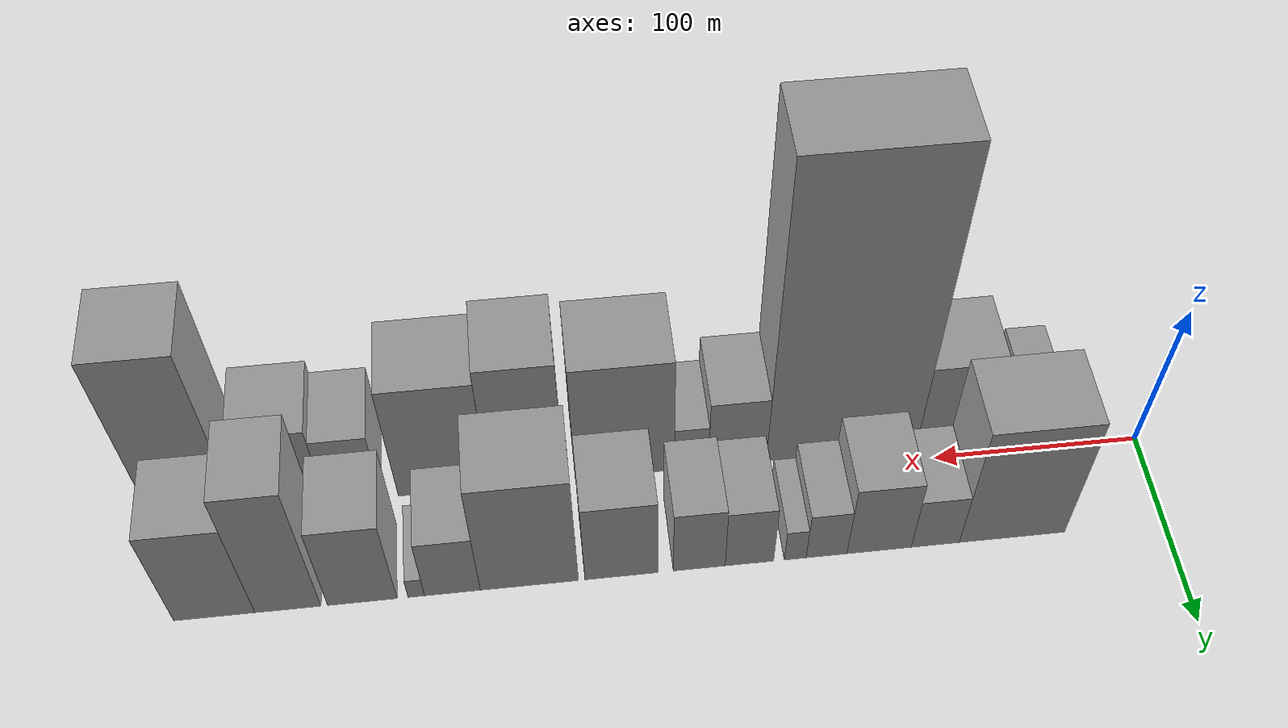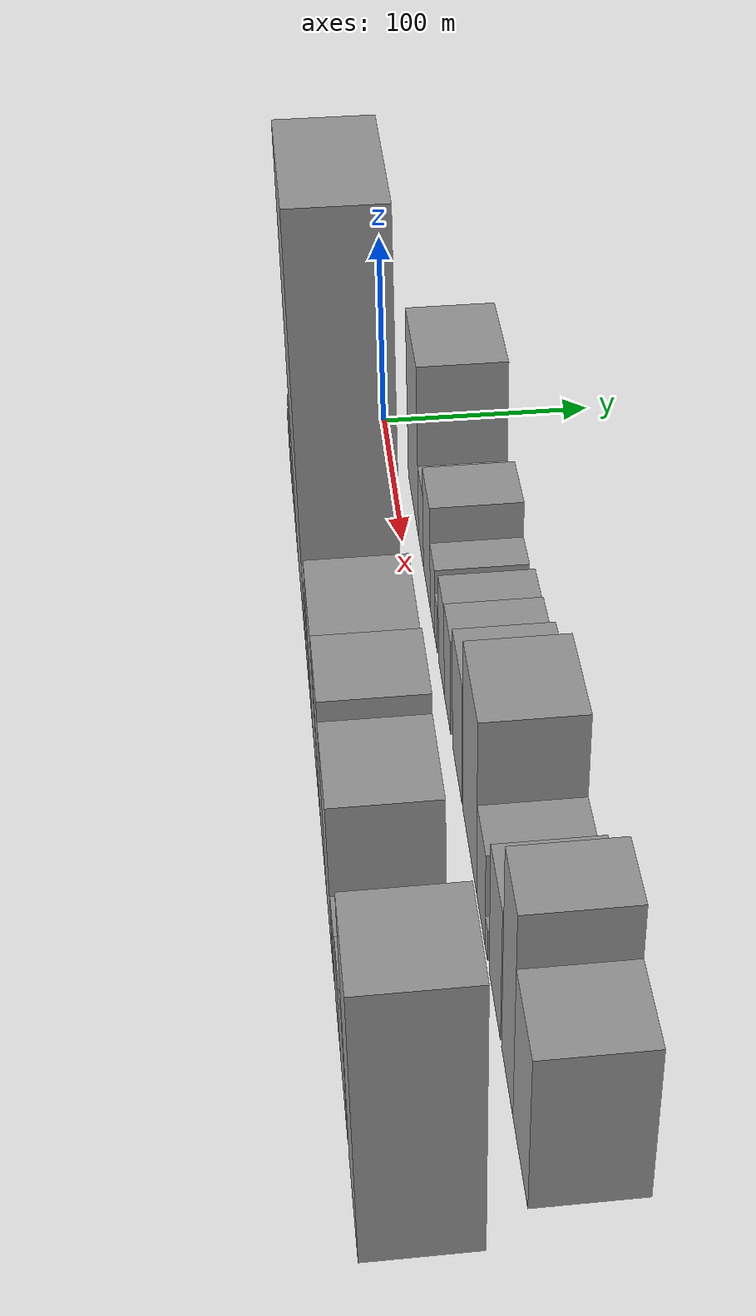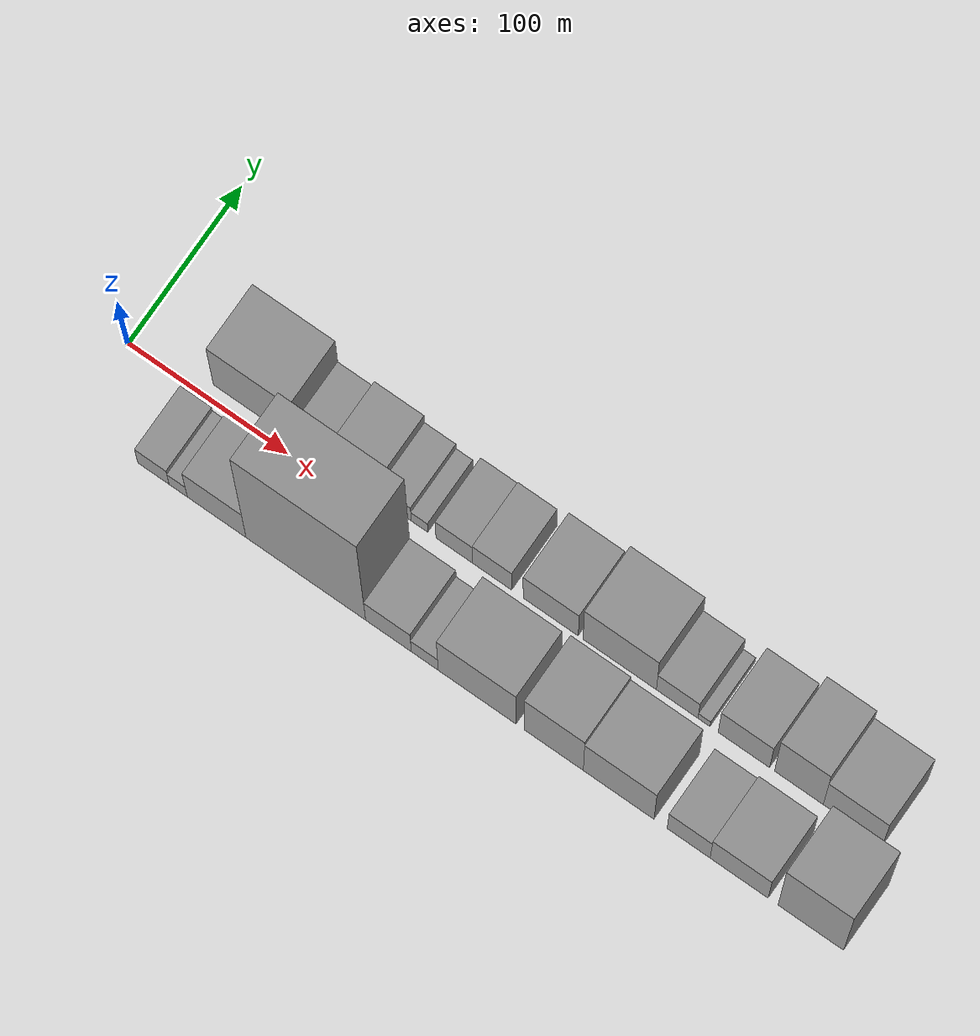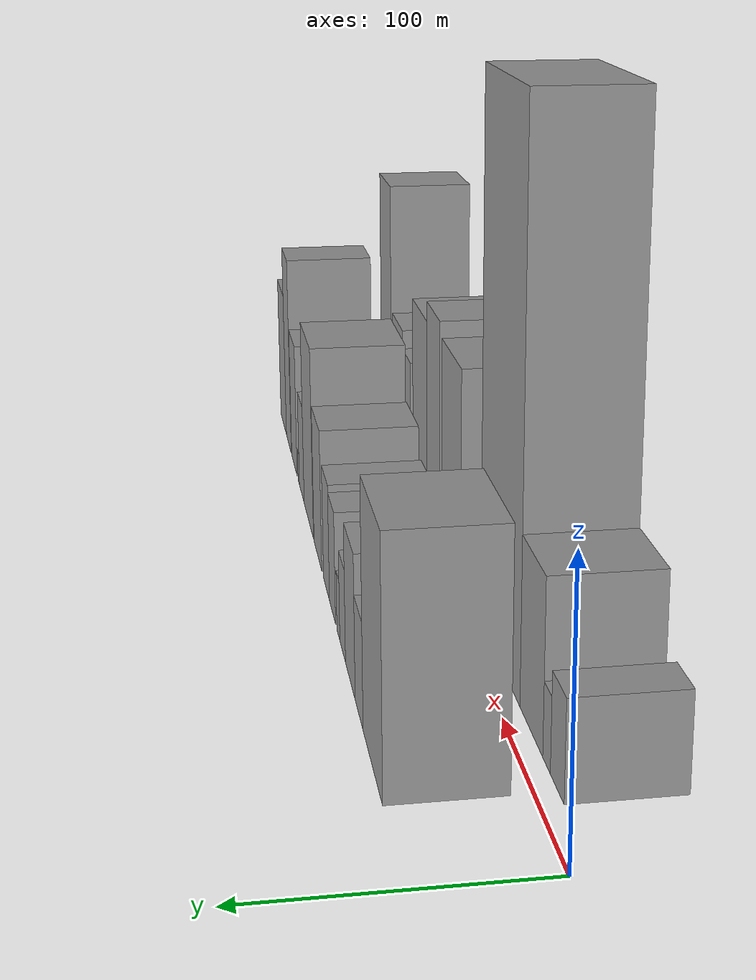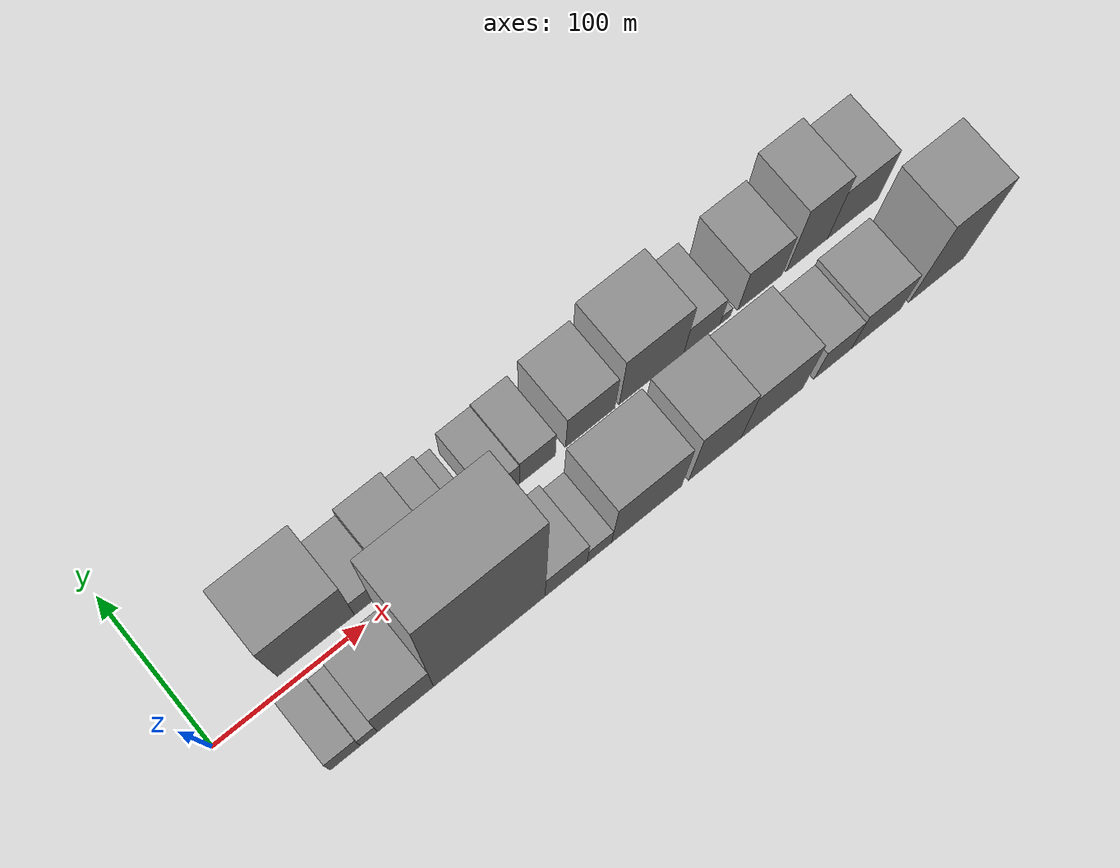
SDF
<sdf version="1.6">
 <world name="default">
  <scene>
   <sky><clouds><speed>12</speed></clouds></sky>
   <ambient>0.4 0.4 0.4 1</ambient>
   <background>0.7 0.7 0.7 1</background>
   <shadows>1</shadows>
  </scene>
  <gravity>0 0 -9.8066</gravity>
  <magnetic_field>6e-06 2.3e-05 -4.2e-05</magnetic_field>
  <physics default="0" name="default_physics" type="ode">
   <ode>
    <solver>
     <type>quick</type>
     <iters>10</iters>
     <sor>1.0</sor>
     <use_dynamic_moi_rescaling>0</use_dynamic_moi_rescaling>
    </solver>
    <constraints>
     <cfm>0</cfm>
     <erp>0.2</erp>
     <contact_max_correcting_vel>100</contact_max_correcting_vel>
     <contact_surface_layer>0.001</contact_surface_layer>
    </constraints>
   </ode>
   <max_step_size>0.004</max_step_size>
   <real_time_factor>1</real_time_factor>
   <real_time_update_rate>250</real_time_update_rate>
  </physics>
  <light name="sun" type="directional">
   <pose>0 0 10 0 0 0</pose>
   <diffuse>0.8 0.8 0.8 1</diffuse>
   <specular>0.2 0.2 0.2 1</specular>
   <attenuation>
    <range>1000</range>
    <constant>0.9</constant>
    <linear>0.01</linear>
    <quadratic>0.001</quadratic>
   </attenuation>
   <direction>-0.5 0.1 -0.9</direction>
  </light>
  <model name="building_1">
   <static>1</static>
   <pose>73.2418 27.5000 0 0.000000 0.000000 1.570796</pose>
   <link name="link">
    <pose>0 0 45.00 0 0 0</pose>
    <collision name="collision"><geometry><box><size>40.0000 50.4836 90.0000</size></box></geometry></collision>
    <visual name="visual">
     <cast_shadows>0</cast_shadows>
     <geometry><box><size>40.0000 50.4836 90.0000</size></box></geometry>
     <material>
      <script>
       <uri>model://grey_wall/materials/scripts</uri>
       <uri>model://grey_wall/materials/textures</uri>
       <name>vrc/grey_wall</name>
      </script>
     </material>
    </visual>
   </link>
  </model>
  <model name="building_2">
   <static>1</static>
   <pose>109.9383 27.5000 0 0.000000 0.000000 1.570796</pose>
   <link name="link">
    <pose>0 0 19.50 0 0 0</pose>
    <collision name="collision"><geometry><box><size>40.0000 22.9094 39.0000</size></box></geometry></collision>
    <visual name="visual">
     <cast_shadows>0</cast_shadows>
     <geometry><box><size>40.0000 22.9094 39.0000</size></box></geometry>
     <material>
      <script>
       <uri>model://grey_wall/materials/scripts</uri>
       <uri>model://grey_wall/materials/textures</uri>
       <name>vrc/grey_wall</name>
      </script>
     </material>
    </visual>
   </link>
  </model>
  <model name="building_3">
   <static>1</static>
   <pose>136.6664 27.5000 0 0.000000 0.000000 1.570796</pose>
   <link name="link">
    <pose>0 0 27.00 0 0 0</pose>
    <collision name="collision"><geometry><box><size>40.0000 30.5467 54.0000</size></box></geometry></collision>
    <visual name="visual">
     <cast_shadows>0</cast_shadows>
     <geometry><box><size>40.0000 30.5467 54.0000</size></box></geometry>
     <material>
      <script>
       <uri>model://grey_wall/materials/scripts</uri>
       <uri>model://grey_wall/materials/textures</uri>
       <name>vrc/grey_wall</name>
      </script>
     </material>
    </visual>
   </link>
  </model>
  <model name="building_4">
   <static>1</static>
   <pose>161.5848 27.5000 0 0.000000 0.000000 1.570796</pose>
   <link name="link">
    <pose>0 0 18.00 0 0 0</pose>
    <collision name="collision"><geometry><box><size>40.0000 19.2902 36.0000</size></box></geometry></collision>
    <visual name="visual">
     <cast_shadows>0</cast_shadows>
     <geometry><box><size>40.0000 19.2902 36.0000</size></box></geometry>
     <material>
      <script>
       <uri>model://grey_wall/materials/scripts</uri>
       <uri>model://grey_wall/materials/textures</uri>
       <name>vrc/grey_wall</name>
      </script>
     </material>
    </visual>
   </link>
  </model>
  <model name="building_5">
   <static>1</static>
   <pose>176.3544 27.5000 0 0.000000 0.000000 1.570796</pose>
   <link name="link">
    <pose>0 0 12.00 0 0 0</pose>
    <collision name="collision"><geometry><box><size>40.0000 10.2491 24.0000</size></box></geometry></collision>
    <visual name="visual">
     <cast_shadows>0</cast_shadows>
     <geometry><box><size>40.0000 10.2491 24.0000</size></box></geometry>
     <material>
      <script>
       <uri>model://grey_wall/materials/scripts</uri>
       <uri>model://grey_wall/materials/textures</uri>
       <name>vrc/grey_wall</name>
      </script>
     </material>
    </visual>
   </link>
  </model>
  <model name="building_6">
   <static>1</static>
   <pose>197.8330 27.5000 0 0.000000 0.000000 1.570796</pose>
   <link name="link">
    <pose>0 0 22.50 0 0 0</pose>
    <collision name="collision"><geometry><box><size>40.0000 22.7079 45.0000</size></box></geometry></collision>
    <visual name="visual">
     <cast_shadows>0</cast_shadows>
     <geometry><box><size>40.0000 22.7079 45.0000</size></box></geometry>
     <material>
      <script>
       <uri>model://grey_wall/materials/scripts</uri>
       <uri>model://grey_wall/materials/textures</uri>
       <name>vrc/grey_wall</name>
      </script>
     </material>
    </visual>
   </link>
  </model>
  <model name="building_7">
   <static>1</static>
   <pose>221.2856 27.5000 0 0.000000 0.000000 1.570796</pose>
   <link name="link">
    <pose>0 0 24.00 0 0 0</pose>
    <collision name="collision"><geometry><box><size>40.0000 24.1974 48.0000</size></box></geometry></collision>
    <visual name="visual">
     <cast_shadows>0</cast_shadows>
     <geometry><box><size>40.0000 24.1974 48.0000</size></box></geometry>
     <material>
      <script>
       <uri>model://grey_wall/materials/scripts</uri>
       <uri>model://grey_wall/materials/textures</uri>
       <name>vrc/grey_wall</name>
      </script>
     </material>
    </visual>
   </link>
  </model>
  <model name="building_8">
   <static>1</static>
   <pose>257.4018 27.5000 0 0.000000 0.000000 1.570796</pose>
   <link name="link">
    <pose>0 0 30.00 0 0 0</pose>
    <collision name="collision"><geometry><box><size>40.0000 34.0350 60.0000</size></box></geometry></collision>
    <visual name="visual">
     <cast_shadows>0</cast_shadows>
     <geometry><box><size>40.0000 34.0350 60.0000</size></box></geometry>
     <material>
      <script>
       <uri>model://grey_wall/materials/scripts</uri>
       <uri>model://grey_wall/materials/textures</uri>
       <name>vrc/grey_wall</name>
      </script>
     </material>
    </visual>
   </link>
  </model>
  <model name="building_9">
   <static>1</static>
   <pose>299.9891 27.5000 0 0.000000 0.000000 1.570796</pose>
   <link name="link">
    <pose>0 0 42.00 0 0 0</pose>
    <collision name="collision"><geometry><box><size>40.0000 45.1396 84.0000</size></box></geometry></collision>
    <visual name="visual">
     <cast_shadows>0</cast_shadows>
     <geometry><box><size>40.0000 45.1396 84.0000</size></box></geometry>
     <material>
      <script>
       <uri>model://grey_wall/materials/scripts</uri>
       <uri>model://grey_wall/materials/textures</uri>
       <name>vrc/grey_wall</name>
      </script>
     </material>
    </visual>
   </link>
  </model>
  <model name="building_10">
   <static>1</static>
   <pose>335.3266 27.5000 0 0.000000 0.000000 1.570796</pose>
   <link name="link">
    <pose>0 0 22.50 0 0 0</pose>
    <collision name="collision"><geometry><box><size>40.0000 25.5353 45.0000</size></box></geometry></collision>
    <visual name="visual">
     <cast_shadows>0</cast_shadows>
     <geometry><box><size>40.0000 25.5353 45.0000</size></box></geometry>
     <material>
      <script>
       <uri>model://grey_wall/materials/scripts</uri>
       <uri>model://grey_wall/materials/textures</uri>
       <name>vrc/grey_wall</name>
      </script>
     </material>
    </visual>
   </link>
  </model>
  <model name="building_11">
   <static>1</static>
   <pose>351.8180 27.5000 0 0.000000 0.000000 1.570796</pose>
   <link name="link">
    <pose>0 0 7.50 0 0 0</pose>
    <collision name="collision"><geometry><box><size>40.0000 7.4475 15.0000</size></box></geometry></collision>
    <visual name="visual">
     <cast_shadows>0</cast_shadows>
     <geometry><box><size>40.0000 7.4475 15.0000</size></box></geometry>
     <material>
      <script>
       <uri>model://grey_wall/materials/scripts</uri>
       <uri>model://grey_wall/materials/textures</uri>
       <name>vrc/grey_wall</name>
      </script>
     </material>
    </visual>
   </link>
  </model>
  <model name="building_12">
   <static>1</static>
   <pose>376.3181 27.5000 0 0.000000 0.000000 1.570796</pose>
   <link name="link">
    <pose>0 0 31.50 0 0 0</pose>
    <collision name="collision"><geometry><box><size>40.0000 31.5528 63.0000</size></box></geometry></collision>
    <visual name="visual">
     <cast_shadows>0</cast_shadows>
     <geometry><box><size>40.0000 31.5528 63.0000</size></box></geometry>
     <material>
      <script>
       <uri>model://grey_wall/materials/scripts</uri>
       <uri>model://grey_wall/materials/textures</uri>
       <name>vrc/grey_wall</name>
      </script>
     </material>
    </visual>
   </link>
  </model>
  <model name="building_13">
   <static>1</static>
   <pose>410.0059 27.5000 0 0.000000 0.000000 1.570796</pose>
   <link name="link">
    <pose>0 0 48.00 0 0 0</pose>
    <collision name="collision"><geometry><box><size>40.0000 29.8227 96.0000</size></box></geometry></collision>
    <visual name="visual">
     <cast_shadows>0</cast_shadows>
     <geometry><box><size>40.0000 29.8227 96.0000</size></box></geometry>
     <material>
      <script>
       <uri>model://grey_wall/materials/scripts</uri>
       <uri>model://grey_wall/materials/textures</uri>
       <name>vrc/grey_wall</name>
      </script>
     </material>
    </visual>
   </link>
  </model>
  <model name="building_14">
   <static>1</static>
   <pose>443.0819 27.5000 0 0.000000 0.000000 1.570796</pose>
   <link name="link">
    <pose>0 0 36.00 0 0 0</pose>
    <collision name="collision"><geometry><box><size>40.0000 36.3294 72.0000</size></box></geometry></collision>
    <visual name="visual">
     <cast_shadows>0</cast_shadows>
     <geometry><box><size>40.0000 36.3294 72.0000</size></box></geometry>
     <material>
      <script>
       <uri>model://grey_wall/materials/scripts</uri>
       <uri>model://grey_wall/materials/textures</uri>
       <name>vrc/grey_wall</name>
      </script>
     </material>
    </visual>
   </link>
  </model>
  <model name="building_15">
   <static>1</static>
   <pose>49.7497 -27.5000 0 0.000000 0.000000 1.570796</pose>
   <link name="link">
    <pose>0 0 18.00 0 0 0</pose>
    <collision name="collision"><geometry><box><size>40.0000 19.4994 36.0000</size></box></geometry></collision>
    <visual name="visual">
     <cast_shadows>0</cast_shadows>
     <geometry><box><size>40.0000 19.4994 36.0000</size></box></geometry>
     <material>
      <script>
       <uri>model://grey_wall/materials/scripts</uri>
       <uri>model://grey_wall/materials/textures</uri>
       <name>vrc/grey_wall</name>
      </script>
     </material>
    </visual>
   </link>
  </model>
  <model name="building_16">
   <static>1</static>
   <pose>65.1363 -27.5000 0 0.000000 0.000000 1.570796</pose>
   <link name="link">
    <pose>0 0 13.50 0 0 0</pose>
    <collision name="collision"><geometry><box><size>40.0000 11.2738 27.0000</size></box></geometry></collision>
    <visual name="visual">
     <cast_shadows>0</cast_shadows>
     <geometry><box><size>40.0000 11.2738 27.0000</size></box></geometry>
     <material>
      <script>
       <uri>model://grey_wall/materials/scripts</uri>
       <uri>model://grey_wall/materials/textures</uri>
       <name>vrc/grey_wall</name>
      </script>
     </material>
    </visual>
   </link>
  </model>
  <model name="building_17">
   <static>1</static>
   <pose>89.0653 -27.5000 0 0.000000 0.000000 1.570796</pose>
   <link name="link">
    <pose>0 0 31.50 0 0 0</pose>
    <collision name="collision"><geometry><box><size>40.0000 36.5842 63.0000</size></box></geometry></collision>
    <visual name="visual">
     <cast_shadows>0</cast_shadows>
     <geometry><box><size>40.0000 36.5842 63.0000</size></box></geometry>
     <material>
      <script>
       <uri>model://grey_wall/materials/scripts</uri>
       <uri>model://grey_wall/materials/textures</uri>
       <name>vrc/grey_wall</name>
      </script>
     </material>
    </visual>
   </link>
  </model>
  <model name="building_18">
   <static>1</static>
   <pose>144.4300 -27.5000 0 0.000000 0.000000 1.570796</pose>
   <link name="link">
    <pose>0 0 105.00 0 0 0</pose>
    <collision name="collision"><geometry><box><size>40.0000 74.1453 210.0000</size></box></geometry></collision>
    <visual name="visual">
     <cast_shadows>0</cast_shadows>
     <geometry><box><size>40.0000 74.1453 210.0000</size></box></geometry>
     <material>
      <script>
       <uri>model://grey_wall/materials/scripts</uri>
       <uri>model://grey_wall/materials/textures</uri>
       <name>vrc/grey_wall</name>
      </script>
     </material>
    </visual>
   </link>
  </model>
  <model name="building_19">
   <static>1</static>
   <pose>195.6673 -27.5000 0 0.000000 0.000000 1.570796</pose>
   <link name="link">
    <pose>0 0 25.50 0 0 0</pose>
    <collision name="collision"><geometry><box><size>40.0000 28.3293 51.0000</size></box></geometry></collision>
    <visual name="visual">
     <cast_shadows>0</cast_shadows>
     <geometry><box><size>40.0000 28.3293 51.0000</size></box></geometry>
     <material>
      <script>
       <uri>model://grey_wall/materials/scripts</uri>
       <uri>model://grey_wall/materials/textures</uri>
       <name>vrc/grey_wall</name>
      </script>
     </material>
    </visual>
   </link>
  </model>
  <model name="building_20">
   <static>1</static>
   <pose>218.1284 -27.5000 0 0.000000 0.000000 1.570796</pose>
   <link name="link">
    <pose>0 0 16.50 0 0 0</pose>
    <collision name="collision"><geometry><box><size>40.0000 16.5929 33.0000</size></box></geometry></collision>
    <visual name="visual">
     <cast_shadows>0</cast_shadows>
     <geometry><box><size>40.0000 16.5929 33.0000</size></box></geometry>
     <material>
      <script>
       <uri>model://grey_wall/materials/scripts</uri>
       <uri>model://grey_wall/materials/textures</uri>
       <name>vrc/grey_wall</name>
      </script>
     </material>
    </visual>
   </link>
  </model>
  <model name="building_21">
   <static>1</static>
   <pose>250.4595 -27.5000 0 0.000000 0.000000 1.570796</pose>
   <link name="link">
    <pose>0 0 43.50 0 0 0</pose>
    <collision name="collision"><geometry><box><size>40.0000 48.0692 87.0000</size></box></geometry></collision>
    <visual name="visual">
     <cast_shadows>0</cast_shadows>
     <geometry><box><size>40.0000 48.0692 87.0000</size></box></geometry>
     <material>
      <script>
       <uri>model://grey_wall/materials/scripts</uri>
       <uri>model://grey_wall/materials/textures</uri>
       <name>vrc/grey_wall</name>
      </script>
     </material>
    </visual>
   </link>
  </model>
  <model name="building_22">
   <static>1</static>
   <pose>297.6655 -27.5000 0 0.000000 0.000000 1.570796</pose>
   <link name="link">
    <pose>0 0 46.50 0 0 0</pose>
    <collision name="collision"><geometry><box><size>40.0000 36.3428 93.0000</size></box></geometry></collision>
    <visual name="visual">
     <cast_shadows>0</cast_shadows>
     <geometry><box><size>40.0000 36.3428 93.0000</size></box></geometry>
     <material>
      <script>
       <uri>model://grey_wall/materials/scripts</uri>
       <uri>model://grey_wall/materials/textures</uri>
       <name>vrc/grey_wall</name>
      </script>
     </material>
    </visual>
   </link>
  </model>
  <model name="building_23">
   <static>1</static>
   <pose>337.5512 -27.5000 0 0.000000 0.000000 1.570796</pose>
   <link name="link">
    <pose>0 0 42.00 0 0 0</pose>
    <collision name="collision"><geometry><box><size>40.0000 43.4286 84.0000</size></box></geometry></collision>
    <visual name="visual">
     <cast_shadows>0</cast_shadows>
     <geometry><box><size>40.0000 43.4286 84.0000</size></box></geometry>
     <material>
      <script>
       <uri>model://grey_wall/materials/scripts</uri>
       <uri>model://grey_wall/materials/textures</uri>
       <name>vrc/grey_wall</name>
      </script>
     </material>
    </visual>
   </link>
  </model>
  <model name="building_24">
   <static>1</static>
   <pose>380.4099 -27.5000 0 0.000000 0.000000 1.570796</pose>
   <link name="link">
    <pose>0 0 25.50 0 0 0</pose>
    <collision name="collision"><geometry><box><size>40.0000 26.2887 51.0000</size></box></geometry></collision>
    <visual name="visual">
     <cast_shadows>0</cast_shadows>
     <geometry><box><size>40.0000 26.2887 51.0000</size></box></geometry>
     <material>
      <script>
       <uri>model://grey_wall/materials/scripts</uri>
       <uri>model://grey_wall/materials/textures</uri>
       <name>vrc/grey_wall</name>
      </script>
     </material>
    </visual>
   </link>
  </model>
  <model name="building_25">
   <static>1</static>
   <pose>411.3445 -27.5000 0 0.000000 0.000000 1.570796</pose>
   <link name="link">
    <pose>0 0 30.00 0 0 0</pose>
    <collision name="collision"><geometry><box><size>40.0000 35.5806 60.0000</size></box></geometry></collision>
    <visual name="visual">
     <cast_shadows>0</cast_shadows>
     <geometry><box><size>40.0000 35.5806 60.0000</size></box></geometry>
     <material>
      <script>
       <uri>model://grey_wall/materials/scripts</uri>
       <uri>model://grey_wall/materials/textures</uri>
       <name>vrc/grey_wall</name>
      </script>
     </material>
    </visual>
   </link>
  </model>
  <model name="building_26">
   <static>1</static>
   <pose>455.1174 -27.5000 0 0.000000 0.000000 1.570796</pose>
   <link name="link">
    <pose>0 0 61.50 0 0 0</pose>
    <collision name="collision"><geometry><box><size>40.0000 39.9651 123.0000</size></box></geometry></collision>
    <visual name="visual">
     <cast_shadows>0</cast_shadows>
     <geometry><box><size>40.0000 39.9651 123.0000</size></box></geometry>
     <material>
      <script>
       <uri>model://grey_wall/materials/scripts</uri>
       <uri>model://grey_wall/materials/textures</uri>
       <name>vrc/grey_wall</name>
      </script>
     </material>
    </visual>
   </link>
  </model>
 </world>
</sdf>
